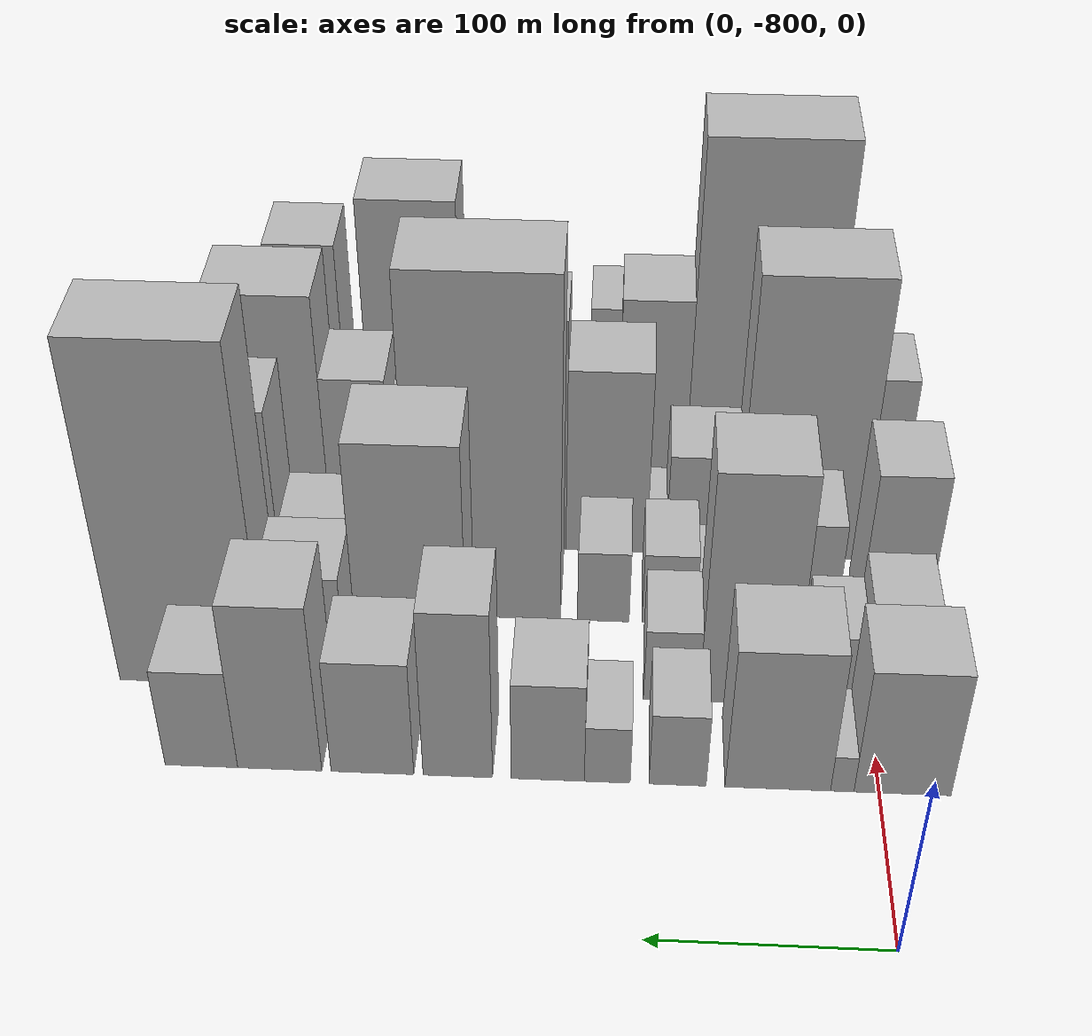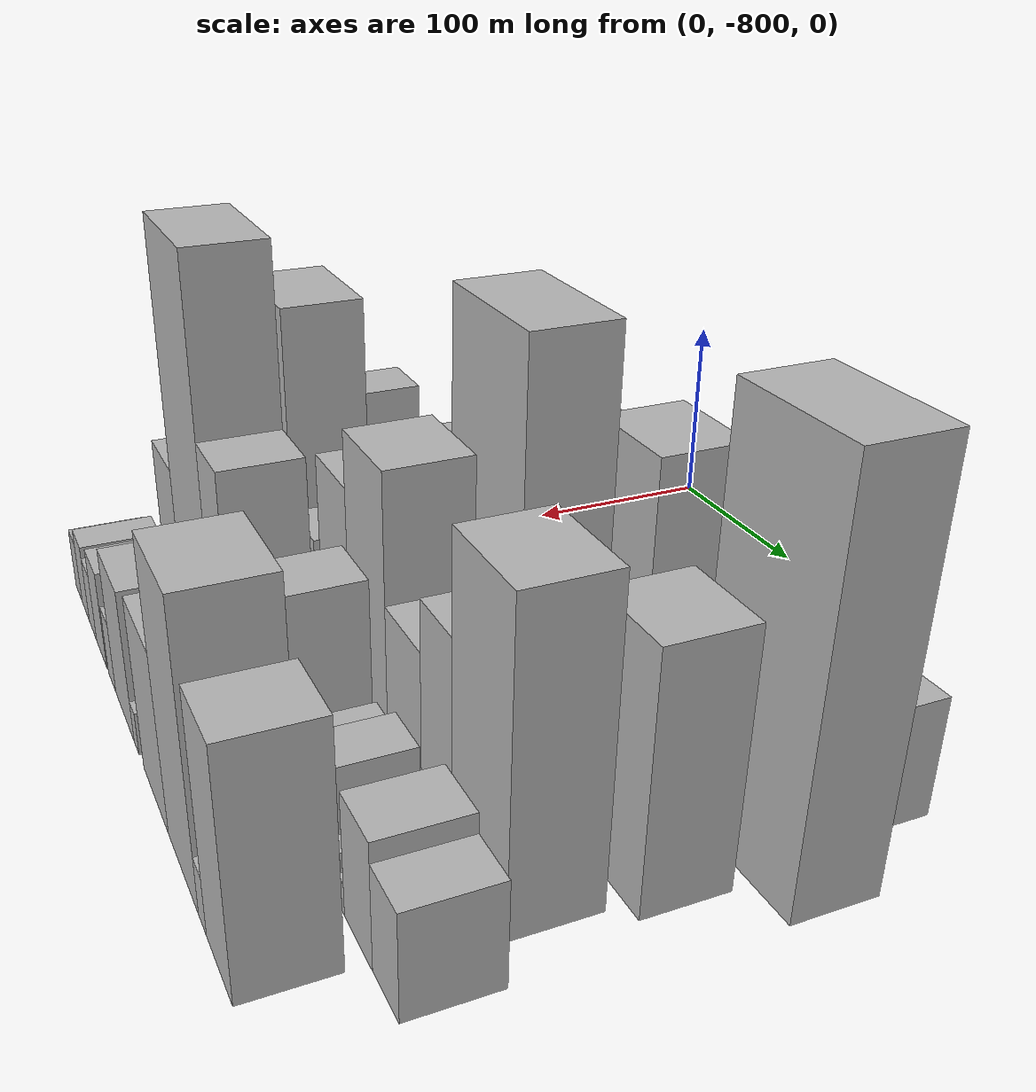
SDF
<sdf version="1.6">
 <world name="default">
  <model name="building_1">
   <static>1</static>
   <pose>100.0000 -809.5537 0 0.000000 0.000000 0.000000</pose>
   <link name="link">
    <pose>0 0 36.00 0 0 0</pose>
    <collision name="collision"><geometry><box><size>40.0000 40.8926 72.0000</size></box></geometry></collision>
    <visual name="visual">
     <cast_shadows>0</cast_shadows>
     <geometry><box><size>40.0000 40.8926 72.0000</size></box></geometry>
     <material>
      <script>
       <uri>model://HANNAS_wall/materials/scripts</uri>
       <uri>model://HANNAS_wall/materials/textures</uri>
       <name>vrc/HANNAS_wall</name>
      </script>
     </material>
    </visual>
   </link>
  </model>
  <model name="building_2">
   <static>1</static>
   <pose>100.0000 -784.1616 0 0.000000 0.000000 0.000000</pose>
   <link name="link">
    <pose>0 0 10.50 0 0 0</pose>
    <collision name="collision"><geometry><box><size>40.0000 9.8917 21.0000</size></box></geometry></collision>
    <visual name="visual">
     <cast_shadows>0</cast_shadows>
     <geometry><box><size>40.0000 9.8917 21.0000</size></box></geometry>
     <material>
      <script>
       <uri>model://HANNAS_wall/materials/scripts</uri>
       <uri>model://HANNAS_wall/materials/textures</uri>
       <name>vrc/HANNAS_wall</name>
      </script>
     </material>
    </visual>
   </link>
  </model>
  <model name="building_3">
   <static>1</static>
   <pose>100.0000 -756.8872 0 0.000000 0.000000 0.000000</pose>
   <link name="link">
    <pose>0 0 40.50 0 0 0</pose>
    <collision name="collision"><geometry><box><size>40.0000 44.6570 81.0000</size></box></geometry></collision>
    <visual name="visual">
     <cast_shadows>0</cast_shadows>
     <geometry><box><size>40.0000 44.6570 81.0000</size></box></geometry>
     <material>
      <script>
       <uri>model://HANNAS_wall/materials/scripts</uri>
       <uri>model://HANNAS_wall/materials/textures</uri>
       <name>vrc/HANNAS_wall</name>
      </script>
     </material>
    </visual>
   </link>
  </model>
  <model name="building_4">
   <static>1</static>
   <pose>100.0000 -714.4112 0 0.000000 0.000000 0.000000</pose>
   <link name="link">
    <pose>0 0 21.00 0 0 0</pose>
    <collision name="collision"><geometry><box><size>40.0000 24.2951 42.0000</size></box></geometry></collision>
    <visual name="visual">
     <cast_shadows>0</cast_shadows>
     <geometry><box><size>40.0000 24.2951 42.0000</size></box></geometry>
     <material>
      <script>
       <uri>model://HANNAS_wall/materials/scripts</uri>
       <uri>model://HANNAS_wall/materials/textures</uri>
       <name>vrc/HANNAS_wall</name>
      </script>
     </material>
    </visual>
   </link>
  </model>
  <model name="building_5">
   <static>1</static>
   <pose>100.0000 -684.5059 0 0.000000 0.000000 0.000000</pose>
   <link name="link">
    <pose>0 0 16.50 0 0 0</pose>
    <collision name="collision"><geometry><box><size>40.0000 19.5154 33.0000</size></box></geometry></collision>
    <visual name="visual">
     <cast_shadows>0</cast_shadows>
     <geometry><box><size>40.0000 19.5154 33.0000</size></box></geometry>
     <material>
      <script>
       <uri>model://HANNAS_wall/materials/scripts</uri>
       <uri>model://HANNAS_wall/materials/textures</uri>
       <name>vrc/HANNAS_wall</name>
      </script>
     </material>
    </visual>
   </link>
  </model>
  <model name="building_6">
   <static>1</static>
   <pose>100.0000 -659.1388 0 0.000000 0.000000 0.000000</pose>
   <link name="link">
    <pose>0 0 28.50 0 0 0</pose>
    <collision name="collision"><geometry><box><size>40.0000 31.2190 57.0000</size></box></geometry></collision>
    <visual name="visual">
     <cast_shadows>0</cast_shadows>
     <geometry><box><size>40.0000 31.2190 57.0000</size></box></geometry>
     <material>
      <script>
       <uri>model://HANNAS_wall/materials/scripts</uri>
       <uri>model://HANNAS_wall/materials/textures</uri>
       <name>vrc/HANNAS_wall</name>
      </script>
     </material>
    </visual>
   </link>
  </model>
  <model name="building_7">
   <static>1</static>
   <pose>100.0000 -620.6411 0 0.000000 0.000000 0.000000</pose>
   <link name="link">
    <pose>0 0 48.00 0 0 0</pose>
    <collision name="collision"><geometry><box><size>40.0000 29.7763 96.0000</size></box></geometry></collision>
    <visual name="visual">
     <cast_shadows>0</cast_shadows>
     <geometry><box><size>40.0000 29.7763 96.0000</size></box></geometry>
     <material>
      <script>
       <uri>model://HANNAS_wall/materials/scripts</uri>
       <uri>model://HANNAS_wall/materials/textures</uri>
       <name>vrc/HANNAS_wall</name>
      </script>
     </material>
    </visual>
   </link>
  </model>
  <model name="building_8">
   <static>1</static>
   <pose>100.0000 -583.9597 0 0.000000 0.000000 0.000000</pose>
   <link name="link">
    <pose>0 0 33.00 0 0 0</pose>
    <collision name="collision"><geometry><box><size>40.0000 35.5866 66.0000</size></box></geometry></collision>
    <visual name="visual">
     <cast_shadows>0</cast_shadows>
     <geometry><box><size>40.0000 35.5866 66.0000</size></box></geometry>
     <material>
      <script>
       <uri>model://HANNAS_wall/materials/scripts</uri>
       <uri>model://HANNAS_wall/materials/textures</uri>
       <name>vrc/HANNAS_wall</name>
      </script>
     </material>
    </visual>
   </link>
  </model>
  <model name="building_9">
   <static>1</static>
   <pose>100.0000 -543.9890 0 0.000000 0.000000 0.000000</pose>
   <link name="link">
    <pose>0 0 48.00 0 0 0</pose>
    <collision name="collision"><geometry><box><size>40.0000 36.3549 96.0000</size></box></geometry></collision>
    <visual name="visual">
     <cast_shadows>0</cast_shadows>
     <geometry><box><size>40.0000 36.3549 96.0000</size></box></geometry>
     <material>
      <script>
       <uri>model://HANNAS_wall/materials/scripts</uri>
       <uri>model://HANNAS_wall/materials/textures</uri>
       <name>vrc/HANNAS_wall</name>
      </script>
     </material>
    </visual>
   </link>
  </model>
  <model name="building_10">
   <static>1</static>
   <pose>100.0000 -510.0783 0 0.000000 0.000000 0.000000</pose>
   <link name="link">
    <pose>0 0 28.50 0 0 0</pose>
    <collision name="collision"><geometry><box><size>40.0000 31.4664 57.0000</size></box></geometry></collision>
    <visual name="visual">
     <cast_shadows>0</cast_shadows>
     <geometry><box><size>40.0000 31.4664 57.0000</size></box></geometry>
     <material>
      <script>
       <uri>model://HANNAS_wall/materials/scripts</uri>
       <uri>model://HANNAS_wall/materials/textures</uri>
       <name>vrc/HANNAS_wall</name>
      </script>
     </material>
    </visual>
   </link>
  </model>
  <model name="building_48">
   <static>1</static>
   <pose>149.0000 -811.1918 0 0.000000 0.000000 0.000000</pose>
   <link name="link">
    <pose>0 0 28.50 0 0 0</pose>
    <collision name="collision"><geometry><box><size>40.0000 29.6163 57.0000</size></box></geometry></collision>
    <visual name="visual">
     <cast_shadows>0</cast_shadows>
     <geometry><box><size>40.0000 29.6163 57.0000</size></box></geometry>
     <material>
      <script>
       <uri>model://HANNAS_wall/materials/scripts</uri>
       <uri>model://HANNAS_wall/materials/textures</uri>
       <name>vrc/HANNAS_wall</name>
      </script>
     </material>
    </visual>
   </link>
  </model>
  <model name="building_49">
   <static>1</static>
   <pose>149.0000 -784.8462 0 0.000000 0.000000 0.000000</pose>
   <link name="link">
    <pose>0 0 21.00 0 0 0</pose>
    <collision name="collision"><geometry><box><size>40.0000 23.0750 42.0000</size></box></geometry></collision>
    <visual name="visual">
     <cast_shadows>0</cast_shadows>
     <geometry><box><size>40.0000 23.0750 42.0000</size></box></geometry>
     <material>
      <script>
       <uri>model://HANNAS_wall/materials/scripts</uri>
       <uri>model://HANNAS_wall/materials/textures</uri>
       <name>vrc/HANNAS_wall</name>
      </script>
     </material>
    </visual>
   </link>
  </model>
  <model name="building_50">
   <static>1</static>
   <pose>149.0000 -745.3304 0 0.000000 0.000000 0.000000</pose>
   <link name="link">
    <pose>0 0 66.00 0 0 0</pose>
    <collision name="collision"><geometry><box><size>40.0000 41.9566 132.0000</size></box></geometry></collision>
    <visual name="visual">
     <cast_shadows>0</cast_shadows>
     <geometry><box><size>40.0000 41.9566 132.0000</size></box></geometry>
     <material>
      <script>
       <uri>model://HANNAS_wall/materials/scripts</uri>
       <uri>model://HANNAS_wall/materials/textures</uri>
       <name>vrc/HANNAS_wall</name>
      </script>
     </material>
    </visual>
   </link>
  </model>
  <model name="building_51">
   <static>1</static>
   <pose>149.0000 -711.9755 0 0.000000 0.000000 0.000000</pose>
   <link name="link">
    <pose>0 0 21.00 0 0 0</pose>
    <collision name="collision"><geometry><box><size>40.0000 24.7531 42.0000</size></box></geometry></collision>
    <visual name="visual">
     <cast_shadows>0</cast_shadows>
     <geometry><box><size>40.0000 24.7531 42.0000</size></box></geometry>
     <material>
      <script>
       <uri>model://HANNAS_wall/materials/scripts</uri>
       <uri>model://HANNAS_wall/materials/textures</uri>
       <name>vrc/HANNAS_wall</name>
      </script>
     </material>
    </visual>
   </link>
  </model>
  <model name="building_52">
   <static>1</static>
   <pose>149.0000 -596.8694 0 0.000000 0.000000 0.000000</pose>
   <link name="link">
    <pose>0 0 70.50 0 0 0</pose>
    <collision name="collision"><geometry><box><size>40.0000 48.4864 141.0000</size></box></geometry></collision>
    <visual name="visual">
     <cast_shadows>0</cast_shadows>
     <geometry><box><size>40.0000 48.4864 141.0000</size></box></geometry>
     <material>
      <script>
       <uri>model://HANNAS_wall/materials/scripts</uri>
       <uri>model://HANNAS_wall/materials/textures</uri>
       <name>vrc/HANNAS_wall</name>
      </script>
     </material>
    </visual>
   </link>
  </model>
  <model name="building_53">
   <static>1</static>
   <pose>149.0000 -548.5624 0 0.000000 0.000000 0.000000</pose>
   <link name="link">
    <pose>0 0 33.00 0 0 0</pose>
    <collision name="collision"><geometry><box><size>40.0000 36.1278 66.0000</size></box></geometry></collision>
    <visual name="visual">
     <cast_shadows>0</cast_shadows>
     <geometry><box><size>40.0000 36.1278 66.0000</size></box></geometry>
     <material>
      <script>
       <uri>model://HANNAS_wall/materials/scripts</uri>
       <uri>model://HANNAS_wall/materials/textures</uri>
       <name>vrc/HANNAS_wall</name>
      </script>
     </material>
    </visual>
   </link>
  </model>
  <model name="building_54">
   <static>1</static>
   <pose>149.0000 -497.0256 0 0.000000 0.000000 0.000000</pose>
   <link name="link">
    <pose>0 0 94.50 0 0 0</pose>
    <collision name="collision"><geometry><box><size>40.0000 66.9458 189.0000</size></box></geometry></collision>
    <visual name="visual">
     <cast_shadows>0</cast_shadows>
     <geometry><box><size>40.0000 66.9458 189.0000</size></box></geometry>
     <material>
      <script>
       <uri>model://HANNAS_wall/materials/scripts</uri>
       <uri>model://HANNAS_wall/materials/textures</uri>
       <name>vrc/HANNAS_wall</name>
      </script>
     </material>
    </visual>
   </link>
  </model>
  <model name="building_96">
   <static>1</static>
   <pose>198.0000 -814.1758 0 0.000000 0.000000 0.000000</pose>
   <link name="link">
    <pose>0 0 46.50 0 0 0</pose>
    <collision name="collision"><geometry><box><size>40.0000 31.6484 93.0000</size></box></geometry></collision>
    <visual name="visual">
     <cast_shadows>0</cast_shadows>
     <geometry><box><size>40.0000 31.6484 93.0000</size></box></geometry>
     <material>
      <script>
       <uri>model://HANNAS_wall/materials/scripts</uri>
       <uri>model://HANNAS_wall/materials/textures</uri>
       <name>vrc/HANNAS_wall</name>
      </script>
     </material>
    </visual>
   </link>
  </model>
  <model name="building_97">
   <static>1</static>
   <pose>198.0000 -771.7618 0 0.000000 0.000000 0.000000</pose>
   <link name="link">
    <pose>0 0 31.50 0 0 0</pose>
    <collision name="collision"><geometry><box><size>40.0000 33.1794 63.0000</size></box></geometry></collision>
    <visual name="visual">
     <cast_shadows>0</cast_shadows>
     <geometry><box><size>40.0000 33.1794 63.0000</size></box></geometry>
     <material>
      <script>
       <uri>model://HANNAS_wall/materials/scripts</uri>
       <uri>model://HANNAS_wall/materials/textures</uri>
       <name>vrc/HANNAS_wall</name>
      </script>
     </material>
    </visual>
   </link>
  </model>
  <model name="building_98">
   <static>1</static>
   <pose>198.0000 -745.2955 0 0.000000 0.000000 0.000000</pose>
   <link name="link">
    <pose>0 0 16.50 0 0 0</pose>
    <collision name="collision"><geometry><box><size>40.0000 19.7532 33.0000</size></box></geometry></collision>
    <visual name="visual">
     <cast_shadows>0</cast_shadows>
     <geometry><box><size>40.0000 19.7532 33.0000</size></box></geometry>
     <material>
      <script>
       <uri>model://HANNAS_wall/materials/scripts</uri>
       <uri>model://HANNAS_wall/materials/textures</uri>
       <name>vrc/HANNAS_wall</name>
      </script>
     </material>
    </visual>
   </link>
  </model>
  <model name="building_99">
   <static>1</static>
   <pose>198.0000 -729.5139 0 0.000000 0.000000 0.000000</pose>
   <link name="link">
    <pose>0 0 13.50 0 0 0</pose>
    <collision name="collision"><geometry><box><size>40.0000 11.8100 27.0000</size></box></geometry></collision>
    <visual name="visual">
     <cast_shadows>0</cast_shadows>
     <geometry><box><size>40.0000 11.8100 27.0000</size></box></geometry>
     <material>
      <script>
       <uri>model://HANNAS_wall/materials/scripts</uri>
       <uri>model://HANNAS_wall/materials/textures</uri>
       <name>vrc/HANNAS_wall</name>
      </script>
     </material>
    </visual>
   </link>
  </model>
  <model name="building_100">
   <static>1</static>
   <pose>198.0000 -711.1180 0 0.000000 0.000000 0.000000</pose>
   <link name="link">
    <pose>0 0 21.00 0 0 0</pose>
    <collision name="collision"><geometry><box><size>40.0000 24.9818 42.0000</size></box></geometry></collision>
    <visual name="visual">
     <cast_shadows>0</cast_shadows>
     <geometry><box><size>40.0000 24.9818 42.0000</size></box></geometry>
     <material>
      <script>
       <uri>model://HANNAS_wall/materials/scripts</uri>
       <uri>model://HANNAS_wall/materials/textures</uri>
       <name>vrc/HANNAS_wall</name>
      </script>
     </material>
    </visual>
   </link>
  </model>
  <model name="building_101">
   <static>1</static>
   <pose>198.0000 -680.5444 0 0.000000 0.000000 0.000000</pose>
   <link name="link">
    <pose>0 0 21.00 0 0 0</pose>
    <collision name="collision"><geometry><box><size>40.0000 24.1653 42.0000</size></box></geometry></collision>
    <visual name="visual">
     <cast_shadows>0</cast_shadows>
     <geometry><box><size>40.0000 24.1653 42.0000</size></box></geometry>
     <material>
      <script>
       <uri>model://HANNAS_wall/materials/scripts</uri>
       <uri>model://HANNAS_wall/materials/textures</uri>
       <name>vrc/HANNAS_wall</name>
      </script>
     </material>
    </visual>
   </link>
  </model>
  <model name="building_102">
   <static>1</static>
   <pose>198.0000 -625.3076 0 0.000000 0.000000 0.000000</pose>
   <link name="link">
    <pose>0 0 96.00 0 0 0</pose>
    <collision name="collision"><geometry><box><size>40.0000 70.3082 192.0000</size></box></geometry></collision>
    <visual name="visual">
     <cast_shadows>0</cast_shadows>
     <geometry><box><size>40.0000 70.3082 192.0000</size></box></geometry>
     <material>
      <script>
       <uri>model://HANNAS_wall/materials/scripts</uri>
       <uri>model://HANNAS_wall/materials/textures</uri>
       <name>vrc/HANNAS_wall</name>
      </script>
     </material>
    </visual>
   </link>
  </model>
  <model name="building_103">
   <static>1</static>
   <pose>198.0000 -572.4885 0 0.000000 0.000000 0.000000</pose>
   <link name="link">
    <pose>0 0 18.00 0 0 0</pose>
    <collision name="collision"><geometry><box><size>40.0000 21.3300 36.0000</size></box></geometry></collision>
    <visual name="visual">
     <cast_shadows>0</cast_shadows>
     <geometry><box><size>40.0000 21.3300 36.0000</size></box></geometry>
     <material>
      <script>
       <uri>model://HANNAS_wall/materials/scripts</uri>
       <uri>model://HANNAS_wall/materials/textures</uri>
       <name>vrc/HANNAS_wall</name>
      </script>
     </material>
    </visual>
   </link>
  </model>
  <model name="building_104">
   <static>1</static>
   <pose>198.0000 -546.5260 0 0.000000 0.000000 0.000000</pose>
   <link name="link">
    <pose>0 0 25.50 0 0 0</pose>
    <collision name="collision"><geometry><box><size>40.0000 30.5950 51.0000</size></box></geometry></collision>
    <visual name="visual">
     <cast_shadows>0</cast_shadows>
     <geometry><box><size>40.0000 30.5950 51.0000</size></box></geometry>
     <material>
      <script>
       <uri>model://HANNAS_wall/materials/scripts</uri>
       <uri>model://HANNAS_wall/materials/textures</uri>
       <name>vrc/HANNAS_wall</name>
      </script>
     </material>
    </visual>
   </link>
  </model>
  <model name="building_105">
   <static>1</static>
   <pose>198.0000 -509.2257 0 0.000000 0.000000 0.000000</pose>
   <link name="link">
    <pose>0 0 58.50 0 0 0</pose>
    <collision name="collision"><geometry><box><size>40.0000 44.0056 117.0000</size></box></geometry></collision>
    <visual name="visual">
     <cast_shadows>0</cast_shadows>
     <geometry><box><size>40.0000 44.0056 117.0000</size></box></geometry>
     <material>
      <script>
       <uri>model://HANNAS_wall/materials/scripts</uri>
       <uri>model://HANNAS_wall/materials/textures</uri>
       <name>vrc/HANNAS_wall</name>
      </script>
     </material>
    </visual>
   </link>
  </model>
  <model name="building_148">
   <static>1</static>
   <pose>247.0000 -826.6048 0 0.000000 0.000000 0.000000</pose>
   <link name="link">
    <pose>0 0 7.50 0 0 0</pose>
    <collision name="collision"><geometry><box><size>40.0000 6.7904 15.0000</size></box></geometry></collision>
    <visual name="visual">
     <cast_shadows>0</cast_shadows>
     <geometry><box><size>40.0000 6.7904 15.0000</size></box></geometry>
     <material>
      <script>
       <uri>model://HANNAS_wall/materials/scripts</uri>
       <uri>model://HANNAS_wall/materials/textures</uri>
       <name>vrc/HANNAS_wall</name>
      </script>
     </material>
    </visual>
   </link>
  </model>
  <model name="building_149">
   <static>1</static>
   <pose>247.0000 -813.3584 0 0.000000 0.000000 0.000000</pose>
   <link name="link">
    <pose>0 0 16.50 0 0 0</pose>
    <collision name="collision"><geometry><box><size>40.0000 19.7025 33.0000</size></box></geometry></collision>
    <visual name="visual">
     <cast_shadows>0</cast_shadows>
     <geometry><box><size>40.0000 19.7025 33.0000</size></box></geometry>
     <material>
      <script>
       <uri>model://HANNAS_wall/materials/scripts</uri>
       <uri>model://HANNAS_wall/materials/textures</uri>
       <name>vrc/HANNAS_wall</name>
      </script>
     </material>
    </visual>
   </link>
  </model>
  <model name="building_150">
   <static>1</static>
   <pose>247.0000 -773.7321 0 0.000000 0.000000 0.000000</pose>
   <link name="link">
    <pose>0 0 81.00 0 0 0</pose>
    <collision name="collision"><geometry><box><size>40.0000 59.5501 162.0000</size></box></geometry></collision>
    <visual name="visual">
     <cast_shadows>0</cast_shadows>
     <geometry><box><size>40.0000 59.5501 162.0000</size></box></geometry>
     <material>
      <script>
       <uri>model://HANNAS_wall/materials/scripts</uri>
       <uri>model://HANNAS_wall/materials/textures</uri>
       <name>vrc/HANNAS_wall</name>
      </script>
     </material>
    </visual>
   </link>
  </model>
  <model name="building_151">
   <static>1</static>
   <pose>247.0000 -726.9221 0 0.000000 0.000000 0.000000</pose>
   <link name="link">
    <pose>0 0 30.00 0 0 0</pose>
    <collision name="collision"><geometry><box><size>40.0000 34.0699 60.0000</size></box></geometry></collision>
    <visual name="visual">
     <cast_shadows>0</cast_shadows>
     <geometry><box><size>40.0000 34.0699 60.0000</size></box></geometry>
     <material>
      <script>
       <uri>model://HANNAS_wall/materials/scripts</uri>
       <uri>model://HANNAS_wall/materials/textures</uri>
       <name>vrc/HANNAS_wall</name>
      </script>
     </material>
    </visual>
   </link>
  </model>
  <model name="building_152">
   <static>1</static>
   <pose>247.0000 -705.2223 0 0.000000 0.000000 0.000000</pose>
   <link name="link">
    <pose>0 0 10.50 0 0 0</pose>
    <collision name="collision"><geometry><box><size>40.0000 9.3296 21.0000</size></box></geometry></collision>
    <visual name="visual">
     <cast_shadows>0</cast_shadows>
     <geometry><box><size>40.0000 9.3296 21.0000</size></box></geometry>
     <material>
      <script>
       <uri>model://HANNAS_wall/materials/scripts</uri>
       <uri>model://HANNAS_wall/materials/textures</uri>
       <name>vrc/HANNAS_wall</name>
      </script>
     </material>
    </visual>
   </link>
  </model>
  <model name="building_153">
   <static>1</static>
   <pose>247.0000 -680.8584 0 0.000000 0.000000 0.000000</pose>
   <link name="link">
    <pose>0 0 54.00 0 0 0</pose>
    <collision name="collision"><geometry><box><size>40.0000 39.3983 108.0000</size></box></geometry></collision>
    <visual name="visual">
     <cast_shadows>0</cast_shadows>
     <geometry><box><size>40.0000 39.3983 108.0000</size></box></geometry>
     <material>
      <script>
       <uri>model://HANNAS_wall/materials/scripts</uri>
       <uri>model://HANNAS_wall/materials/textures</uri>
       <name>vrc/HANNAS_wall</name>
      </script>
     </material>
    </visual>
   </link>
  </model>
  <model name="building_154">
   <static>1</static>
   <pose>247.0000 -638.1900 0 0.000000 0.000000 0.000000</pose>
   <link name="link">
    <pose>0 0 67.50 0 0 0</pose>
    <collision name="collision"><geometry><box><size>40.0000 45.9385 135.0000</size></box></geometry></collision>
    <visual name="visual">
     <cast_shadows>0</cast_shadows>
     <geometry><box><size>40.0000 45.9385 135.0000</size></box></geometry>
     <material>
      <script>
       <uri>model://HANNAS_wall/materials/scripts</uri>
       <uri>model://HANNAS_wall/materials/textures</uri>
       <name>vrc/HANNAS_wall</name>
      </script>
     </material>
    </visual>
   </link>
  </model>
  <model name="building_155">
   <static>1</static>
   <pose>247.0000 -596.1404 0 0.000000 0.000000 0.000000</pose>
   <link name="link">
    <pose>0 0 37.50 0 0 0</pose>
    <collision name="collision"><geometry><box><size>40.0000 38.1607 75.0000</size></box></geometry></collision>
    <visual name="visual">
     <cast_shadows>0</cast_shadows>
     <geometry><box><size>40.0000 38.1607 75.0000</size></box></geometry>
     <material>
      <script>
       <uri>model://HANNAS_wall/materials/scripts</uri>
       <uri>model://HANNAS_wall/materials/textures</uri>
       <name>vrc/HANNAS_wall</name>
      </script>
     </material>
    </visual>
   </link>
  </model>
  <model name="building_156">
   <static>1</static>
   <pose>247.0000 -561.8321 0 0.000000 0.000000 0.000000</pose>
   <link name="link">
    <pose>0 0 49.50 0 0 0</pose>
    <collision name="collision"><geometry><box><size>40.0000 30.4558 99.0000</size></box></geometry></collision>
    <visual name="visual">
     <cast_shadows>0</cast_shadows>
     <geometry><box><size>40.0000 30.4558 99.0000</size></box></geometry>
     <material>
      <script>
       <uri>model://HANNAS_wall/materials/scripts</uri>
       <uri>model://HANNAS_wall/materials/textures</uri>
       <name>vrc/HANNAS_wall</name>
      </script>
     </material>
    </visual>
   </link>
  </model>
  <model name="building_157">
   <static>1</static>
   <pose>247.0000 -521.4308 0 0.000000 0.000000 0.000000</pose>
   <link name="link">
    <pose>0 0 72.00 0 0 0</pose>
    <collision name="collision"><geometry><box><size>40.0000 50.3468 144.0000</size></box></geometry></collision>
    <visual name="visual">
     <cast_shadows>0</cast_shadows>
     <geometry><box><size>40.0000 50.3468 144.0000</size></box></geometry>
     <material>
      <script>
       <uri>model://HANNAS_wall/materials/scripts</uri>
       <uri>model://HANNAS_wall/materials/textures</uri>
       <name>vrc/HANNAS_wall</name>
      </script>
     </material>
    </visual>
   </link>
  </model>
  <model name="building_194">
   <static>1</static>
   <pose>296.0000 -808.8765 0 0.000000 0.000000 0.000000</pose>
   <link name="link">
    <pose>0 0 36.00 0 0 0</pose>
    <collision name="collision"><geometry><box><size>40.0000 42.2470 72.0000</size></box></geometry></collision>
    <visual name="visual">
     <cast_shadows>0</cast_shadows>
     <geometry><box><size>40.0000 42.2470 72.0000</size></box></geometry>
     <material>
      <script>
       <uri>model://HANNAS_wall/materials/scripts</uri>
       <uri>model://HANNAS_wall/materials/textures</uri>
       <name>vrc/HANNAS_wall</name>
      </script>
     </material>
    </visual>
   </link>
  </model>
  <model name="building_195">
   <static>1</static>
   <pose>296.0000 -753.5708 0 0.000000 0.000000 0.000000</pose>
   <link name="link">
    <pose>0 0 100.50 0 0 0</pose>
    <collision name="collision"><geometry><box><size>40.0000 68.3645 201.0000</size></box></geometry></collision>
    <visual name="visual">
     <cast_shadows>0</cast_shadows>
     <geometry><box><size>40.0000 68.3645 201.0000</size></box></geometry>
     <material>
      <script>
       <uri>model://HANNAS_wall/materials/scripts</uri>
       <uri>model://HANNAS_wall/materials/textures</uri>
       <name>vrc/HANNAS_wall</name>
      </script>
     </material>
    </visual>
   </link>
  </model>
  <model name="building_196">
   <static>1</static>
   <pose>296.0000 -702.2759 0 0.000000 0.000000 0.000000</pose>
   <link name="link">
    <pose>0 0 57.00 0 0 0</pose>
    <collision name="collision"><geometry><box><size>40.0000 34.2254 114.0000</size></box></geometry></collision>
    <visual name="visual">
     <cast_shadows>0</cast_shadows>
     <geometry><box><size>40.0000 34.2254 114.0000</size></box></geometry>
     <material>
      <script>
       <uri>model://HANNAS_wall/materials/scripts</uri>
       <uri>model://HANNAS_wall/materials/textures</uri>
       <name>vrc/HANNAS_wall</name>
      </script>
     </material>
    </visual>
   </link>
  </model>
  <model name="building_197">
   <static>1</static>
   <pose>296.0000 -679.5792 0 0.000000 0.000000 0.000000</pose>
   <link name="link">
    <pose>0 0 13.50 0 0 0</pose>
    <collision name="collision"><geometry><box><size>40.0000 11.1678 27.0000</size></box></geometry></collision>
    <visual name="visual">
     <cast_shadows>0</cast_shadows>
     <geometry><box><size>40.0000 11.1678 27.0000</size></box></geometry>
     <material>
      <script>
       <uri>model://HANNAS_wall/materials/scripts</uri>
       <uri>model://HANNAS_wall/materials/textures</uri>
       <name>vrc/HANNAS_wall</name>
      </script>
     </material>
    </visual>
   </link>
  </model>
  <model name="building_198">
   <static>1</static>
   <pose>296.0000 -658.9197 0 0.000000 0.000000 0.000000</pose>
   <link name="link">
    <pose>0 0 30.00 0 0 0</pose>
    <collision name="collision"><geometry><box><size>40.0000 30.1513 60.0000</size></box></geometry></collision>
    <visual name="visual">
     <cast_shadows>0</cast_shadows>
     <geometry><box><size>40.0000 30.1513 60.0000</size></box></geometry>
     <material>
      <script>
       <uri>model://HANNAS_wall/materials/scripts</uri>
       <uri>model://HANNAS_wall/materials/textures</uri>
       <name>vrc/HANNAS_wall</name>
      </script>
     </material>
    </visual>
   </link>
  </model>
  <model name="building_199">
   <static>1</static>
   <pose>296.0000 -623.8943 0 0.000000 0.000000 0.000000</pose>
   <link name="link">
    <pose>0 0 46.50 0 0 0</pose>
    <collision name="collision"><geometry><box><size>40.0000 31.8995 93.0000</size></box></geometry></collision>
    <visual name="visual">
     <cast_shadows>0</cast_shadows>
     <geometry><box><size>40.0000 31.8995 93.0000</size></box></geometry>
     <material>
      <script>
       <uri>model://HANNAS_wall/materials/scripts</uri>
       <uri>model://HANNAS_wall/materials/textures</uri>
       <name>vrc/HANNAS_wall</name>
      </script>
     </material>
    </visual>
   </link>
  </model>
  <model name="building_200">
   <static>1</static>
   <pose>296.0000 -591.9355 0 0.000000 0.000000 0.000000</pose>
   <link name="link">
    <pose>0 0 19.50 0 0 0</pose>
    <collision name="collision"><geometry><box><size>40.0000 22.0180 39.0000</size></box></geometry></collision>
    <visual name="visual">
     <cast_shadows>0</cast_shadows>
     <geometry><box><size>40.0000 22.0180 39.0000</size></box></geometry>
     <material>
      <script>
       <uri>model://HANNAS_wall/materials/scripts</uri>
       <uri>model://HANNAS_wall/materials/textures</uri>
       <name>vrc/HANNAS_wall</name>
      </script>
     </material>
    </visual>
   </link>
  </model>
  <model name="building_201">
   <static>1</static>
   <pose>296.0000 -568.3559 0 0.000000 0.000000 0.000000</pose>
   <link name="link">
    <pose>0 0 24.00 0 0 0</pose>
    <collision name="collision"><geometry><box><size>40.0000 25.1412 48.0000</size></box></geometry></collision>
    <visual name="visual">
     <cast_shadows>0</cast_shadows>
     <geometry><box><size>40.0000 25.1412 48.0000</size></box></geometry>
     <material>
      <script>
       <uri>model://HANNAS_wall/materials/scripts</uri>
       <uri>model://HANNAS_wall/materials/textures</uri>
       <name>vrc/HANNAS_wall</name>
      </script>
     </material>
    </visual>
   </link>
  </model>
  <model name="building_202">
   <static>1</static>
   <pose>296.0000 -542.7896 0 0.000000 0.000000 0.000000</pose>
   <link name="link">
    <pose>0 0 12.00 0 0 0</pose>
    <collision name="collision"><geometry><box><size>40.0000 9.9915 24.0000</size></box></geometry></collision>
    <visual name="visual">
     <cast_shadows>0</cast_shadows>
     <geometry><box><size>40.0000 9.9915 24.0000</size></box></geometry>
     <material>
      <script>
       <uri>model://HANNAS_wall/materials/scripts</uri>
       <uri>model://HANNAS_wall/materials/textures</uri>
       <name>vrc/HANNAS_wall</name>
      </script>
     </material>
    </visual>
   </link>
  </model>
  <model name="building_203">
   <static>1</static>
   <pose>296.0000 -534.6076 0 0.000000 0.000000 0.000000</pose>
   <link name="link">
    <pose>0 0 7.50 0 0 0</pose>
    <collision name="collision"><geometry><box><size>40.0000 6.3723 15.0000</size></box></geometry></collision>
    <visual name="visual">
     <cast_shadows>0</cast_shadows>
     <geometry><box><size>40.0000 6.3723 15.0000</size></box></geometry>
     <material>
      <script>
       <uri>model://HANNAS_wall/materials/scripts</uri>
       <uri>model://HANNAS_wall/materials/textures</uri>
       <name>vrc/HANNAS_wall</name>
      </script>
     </material>
    </visual>
   </link>
  </model>
  <model name="building_204">
   <static>1</static>
   <pose>296.0000 -516.5958 0 0.000000 0.000000 0.000000</pose>
   <link name="link">
    <pose>0 0 28.50 0 0 0</pose>
    <collision name="collision"><geometry><box><size>40.0000 29.6514 57.0000</size></box></geometry></collision>
    <visual name="visual">
     <cast_shadows>0</cast_shadows>
     <geometry><box><size>40.0000 29.6514 57.0000</size></box></geometry>
     <material>
      <script>
       <uri>model://HANNAS_wall/materials/scripts</uri>
       <uri>model://HANNAS_wall/materials/textures</uri>
       <name>vrc/HANNAS_wall</name>
      </script>
     </material>
    </visual>
   </link>
  </model>
  <model name="building_205">
   <static>1</static>
   <pose>296.0000 -488.9915 0 0.000000 0.000000 0.000000</pose>
   <link name="link">
    <pose>0 0 24.00 0 0 0</pose>
    <collision name="collision"><geometry><box><size>40.0000 25.5571 48.0000</size></box></geometry></collision>
    <visual name="visual">
     <cast_shadows>0</cast_shadows>
     <geometry><box><size>40.0000 25.5571 48.0000</size></box></geometry>
     <material>
      <script>
       <uri>model://HANNAS_wall/materials/scripts</uri>
       <uri>model://HANNAS_wall/materials/textures</uri>
       <name>vrc/HANNAS_wall</name>
      </script>
     </material>
    </visual>
   </link>
  </model>
  <model name="building_246">
   <static>1</static>
   <pose>345.0000 -812.4630 0 0.000000 0.000000 0.000000</pose>
   <link name="link">
    <pose>0 0 16.50 0 0 0</pose>
    <collision name="collision"><geometry><box><size>40.0000 19.0741 33.0000</size></box></geometry></collision>
    <visual name="visual">
     <cast_shadows>0</cast_shadows>
     <geometry><box><size>40.0000 19.0741 33.0000</size></box></geometry>
     <material>
      <script>
       <uri>model://HANNAS_wall/materials/scripts</uri>
       <uri>model://HANNAS_wall/materials/textures</uri>
       <name>vrc/HANNAS_wall</name>
      </script>
     </material>
    </visual>
   </link>
  </model>
  <model name="building_247">
   <static>1</static>
   <pose>345.0000 -792.0735 0 0.000000 0.000000 0.000000</pose>
   <link name="link">
    <pose>0 0 21.00 0 0 0</pose>
    <collision name="collision"><geometry><box><size>40.0000 21.7049 42.0000</size></box></geometry></collision>
    <visual name="visual">
     <cast_shadows>0</cast_shadows>
     <geometry><box><size>40.0000 21.7049 42.0000</size></box></geometry>
     <material>
      <script>
       <uri>model://HANNAS_wall/materials/scripts</uri>
       <uri>model://HANNAS_wall/materials/textures</uri>
       <name>vrc/HANNAS_wall</name>
      </script>
     </material>
    </visual>
   </link>
  </model>
  <model name="building_248">
   <static>1</static>
   <pose>345.0000 -771.0779 0 0.000000 0.000000 0.000000</pose>
   <link name="link">
    <pose>0 0 18.00 0 0 0</pose>
    <collision name="collision"><geometry><box><size>40.0000 20.2862 36.0000</size></box></geometry></collision>
    <visual name="visual">
     <cast_shadows>0</cast_shadows>
     <geometry><box><size>40.0000 20.2862 36.0000</size></box></geometry>
     <material>
      <script>
       <uri>model://HANNAS_wall/materials/scripts</uri>
       <uri>model://HANNAS_wall/materials/textures</uri>
       <name>vrc/HANNAS_wall</name>
      </script>
     </material>
    </visual>
   </link>
  </model>
  <model name="building_249">
   <static>1</static>
   <pose>345.0000 -747.3545 0 0.000000 0.000000 0.000000</pose>
   <link name="link">
    <pose>0 0 25.50 0 0 0</pose>
    <collision name="collision"><geometry><box><size>40.0000 27.1606 51.0000</size></box></geometry></collision>
    <visual name="visual">
     <cast_shadows>0</cast_shadows>
     <geometry><box><size>40.0000 27.1606 51.0000</size></box></geometry>
     <material>
      <script>
       <uri>model://HANNAS_wall/materials/scripts</uri>
       <uri>model://HANNAS_wall/materials/textures</uri>
       <name>vrc/HANNAS_wall</name>
      </script>
     </material>
    </visual>
   </link>
  </model>
  <model name="building_250">
   <static>1</static>
   <pose>345.0000 -720.6937 0 0.000000 0.000000 0.000000</pose>
   <link name="link">
    <pose>0 0 18.00 0 0 0</pose>
    <collision name="collision"><geometry><box><size>40.0000 18.1611 36.0000</size></box></geometry></collision>
    <visual name="visual">
     <cast_shadows>0</cast_shadows>
     <geometry><box><size>40.0000 18.1611 36.0000</size></box></geometry>
     <material>
      <script>
       <uri>model://HANNAS_wall/materials/scripts</uri>
       <uri>model://HANNAS_wall/materials/textures</uri>
       <name>vrc/HANNAS_wall</name>
      </script>
     </material>
    </visual>
   </link>
  </model>
  <model name="building_251">
   <static>1</static>
   <pose>345.0000 -690.5927 0 0.000000 0.000000 0.000000</pose>
   <link name="link">
    <pose>0 0 37.50 0 0 0</pose>
    <collision name="collision"><geometry><box><size>40.0000 42.0409 75.0000</size></box></geometry></collision>
    <visual name="visual">
     <cast_shadows>0</cast_shadows>
     <geometry><box><size>40.0000 42.0409 75.0000</size></box></geometry>
     <material>
      <script>
       <uri>model://HANNAS_wall/materials/scripts</uri>
       <uri>model://HANNAS_wall/materials/textures</uri>
       <name>vrc/HANNAS_wall</name>
      </script>
     </material>
    </visual>
   </link>
  </model>
  <model name="building_252">
   <static>1</static>
   <pose>345.0000 -664.4527 0 0.000000 0.000000 0.000000</pose>
   <link name="link">
    <pose>0 0 10.50 0 0 0</pose>
    <collision name="collision"><geometry><box><size>40.0000 10.2392 21.0000</size></box></geometry></collision>
    <visual name="visual">
     <cast_shadows>0</cast_shadows>
     <geometry><box><size>40.0000 10.2392 21.0000</size></box></geometry>
     <material>
      <script>
       <uri>model://HANNAS_wall/materials/scripts</uri>
       <uri>model://HANNAS_wall/materials/textures</uri>
       <name>vrc/HANNAS_wall</name>
      </script>
     </material>
    </visual>
   </link>
  </model>
  <model name="building_253">
   <static>1</static>
   <pose>345.0000 -625.8617 0 0.000000 0.000000 0.000000</pose>
   <link name="link">
    <pose>0 0 42.00 0 0 0</pose>
    <collision name="collision"><geometry><box><size>40.0000 46.9427 84.0000</size></box></geometry></collision>
    <visual name="visual">
     <cast_shadows>0</cast_shadows>
     <geometry><box><size>40.0000 46.9427 84.0000</size></box></geometry>
     <material>
      <script>
       <uri>model://HANNAS_wall/materials/scripts</uri>
       <uri>model://HANNAS_wall/materials/textures</uri>
       <name>vrc/HANNAS_wall</name>
      </script>
     </material>
    </visual>
   </link>
  </model>
  <model name="building_254">
   <static>1</static>
   <pose>345.0000 -577.6453 0 0.000000 0.000000 0.000000</pose>
   <link name="link">
    <pose>0 0 67.50 0 0 0</pose>
    <collision name="collision"><geometry><box><size>40.0000 49.4900 135.0000</size></box></geometry></collision>
    <visual name="visual">
     <cast_shadows>0</cast_shadows>
     <geometry><box><size>40.0000 49.4900 135.0000</size></box></geometry>
     <material>
      <script>
       <uri>model://HANNAS_wall/materials/scripts</uri>
       <uri>model://HANNAS_wall/materials/textures</uri>
       <name>vrc/HANNAS_wall</name>
      </script>
     </material>
    </visual>
   </link>
  </model>
  <model name="building_255">
   <static>1</static>
   <pose>345.0000 -546.9639 0 0.000000 0.000000 0.000000</pose>
   <link name="link">
    <pose>0 0 13.50 0 0 0</pose>
    <collision name="collision"><geometry><box><size>40.0000 11.8729 27.0000</size></box></geometry></collision>
    <visual name="visual">
     <cast_shadows>0</cast_shadows>
     <geometry><box><size>40.0000 11.8729 27.0000</size></box></geometry>
     <material>
      <script>
       <uri>model://HANNAS_wall/materials/scripts</uri>
       <uri>model://HANNAS_wall/materials/textures</uri>
       <name>vrc/HANNAS_wall</name>
      </script>
     </material>
    </visual>
   </link>
  </model>
  <model name="building_256">
   <static>1</static>
   <pose>345.0000 -523.0775 0 0.000000 0.000000 0.000000</pose>
   <link name="link">
    <pose>0 0 54.00 0 0 0</pose>
    <collision name="collision"><geometry><box><size>40.0000 35.8998 108.0000</size></box></geometry></collision>
    <visual name="visual">
     <cast_shadows>0</cast_shadows>
     <geometry><box><size>40.0000 35.8998 108.0000</size></box></geometry>
     <material>
      <script>
       <uri>model://HANNAS_wall/materials/scripts</uri>
       <uri>model://HANNAS_wall/materials/textures</uri>
       <name>vrc/HANNAS_wall</name>
      </script>
     </material>
    </visual>
   </link>
  </model>
 </world>
</sdf>
